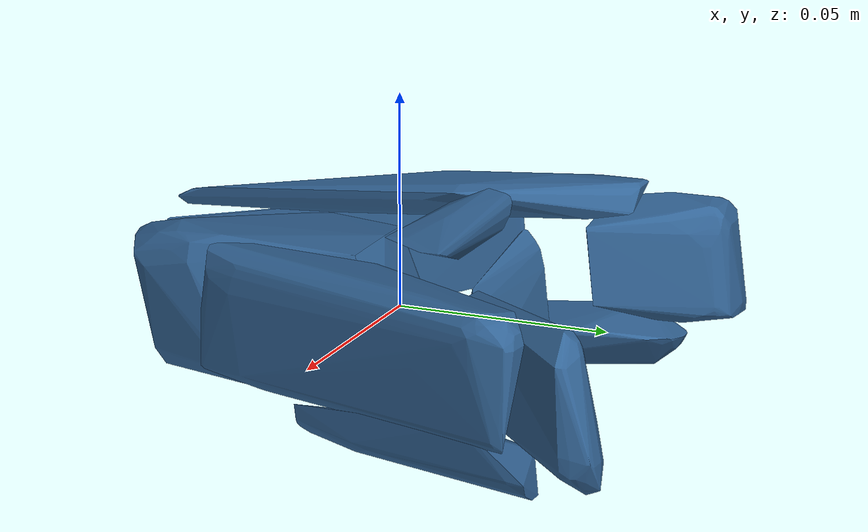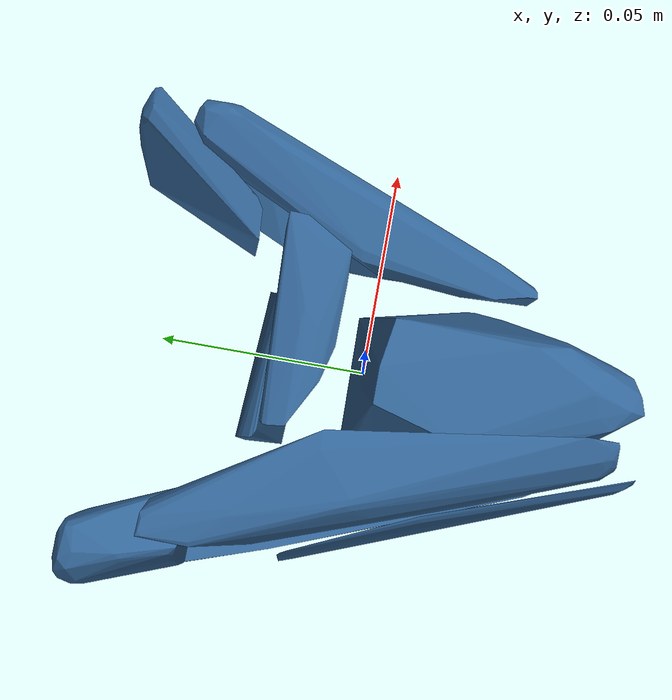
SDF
<?xml version='1.0' encoding='UTF-8'?>
<!-- This SDF was autogenerated by obj_to_drake_sdf.py -->
<sdf version="1.7">
  <model name="A_shape_video">
    <link name="A_shape_video">
      <inertial>
        <pose>0 0 0 0 0 0</pose>
        <mass>0.05</mass>
        <inertia>
          <ixx>4.9586535e-05</ixx>
          <iyy>6.0533609e-05</iyy>
          <izz>9.3121088e-05</izz>
          <ixy>1.6285883e-06</ixy>
          <ixz>1.030854e-06</ixz>
          <iyz>7.3376111e-07</iyz>
        </inertia>
      </inertial>
      <visual name="convex_0">
        <pose>0 0 0 0 0 0</pose>
        <geometry>
          <mesh>
            <uri>A_shape_video_convex_0.obj</uri>
          </mesh>
        </geometry>
        <material>
          <diffuse>0.19607843137254902 0.39215686274509803 0.5882352941176471 1</diffuse>
        </material>
      </visual>
      <collision name="convex_0_volume">
        <pose>0 0 0 0 0 0</pose>
        <geometry>
          <mesh>
            <uri>A_shape_video_convex_0.obj</uri>
          </mesh>
        </geometry>
        <drake:proximity_properties xmlns:drake="uri:drake">
          <drake:compliant_hydroelastic/>
          <drake:hydroelastic_modulus> 3.0e7 </drake:hydroelastic_modulus>
          <drake:mesh_resolution_hint> 0.02 </drake:mesh_resolution_hint>
          <drake:hunt_crossley_dissipation>10</drake:hunt_crossley_dissipation>
          <drake:mu_dynamic>0.3</drake:mu_dynamic>
        </drake:proximity_properties>
      </collision>
      <visual name="convex_1">
        <pose>0 0 0 0 0 0</pose>
        <geometry>
          <mesh>
            <uri>A_shape_video_convex_1.obj</uri>
          </mesh>
        </geometry>
        <material>
          <diffuse>0.19607843137254902 0.39215686274509803 0.5882352941176471 1</diffuse>
        </material>
      </visual>
      <collision name="convex_1_volume">
        <pose>0 0 0 0 0 0</pose>
        <geometry>
          <mesh>
            <uri>A_shape_video_convex_1.obj</uri>
          </mesh>
        </geometry>
        <drake:proximity_properties xmlns:drake="uri:drake">
          <drake:compliant_hydroelastic/>
          <drake:hydroelastic_modulus> 3.0e7 </drake:hydroelastic_modulus>
          <drake:mesh_resolution_hint> 0.02 </drake:mesh_resolution_hint>
          <drake:hunt_crossley_dissipation>10</drake:hunt_crossley_dissipation>
          <drake:mu_dynamic>0.3</drake:mu_dynamic>
        </drake:proximity_properties>
      </collision>
      <visual name="convex_2">
        <pose>0 0 0 0 0 0</pose>
        <geometry>
          <mesh>
            <uri>A_shape_video_convex_2.obj</uri>
          </mesh>
        </geometry>
        <material>
          <diffuse>0.19607843137254902 0.39215686274509803 0.5882352941176471 1</diffuse>
        </material>
      </visual>
      <collision name="convex_2_volume">
        <pose>0 0 0 0 0 0</pose>
        <geometry>
          <mesh>
            <uri>A_shape_video_convex_2.obj</uri>
          </mesh>
        </geometry>
        <drake:proximity_properties xmlns:drake="uri:drake">
          <drake:compliant_hydroelastic/>
          <drake:hydroelastic_modulus> 3.0e7 </drake:hydroelastic_modulus>
          <drake:mesh_resolution_hint> 0.02 </drake:mesh_resolution_hint>
          <drake:hunt_crossley_dissipation>10</drake:hunt_crossley_dissipation>
          <drake:mu_dynamic>0.3</drake:mu_dynamic>
        </drake:proximity_properties>
      </collision>
      <visual name="convex_3">
        <pose>0 0 0 0 0 0</pose>
        <geometry>
          <mesh>
            <uri>A_shape_video_convex_3.obj</uri>
          </mesh>
        </geometry>
        <material>
          <diffuse>0.19607843137254902 0.39215686274509803 0.5882352941176471 1</diffuse>
        </material>
      </visual>
      <collision name="convex_3_volume">
        <pose>0 0 0 0 0 0</pose>
        <geometry>
          <mesh>
            <uri>A_shape_video_convex_3.obj</uri>
          </mesh>
        </geometry>
        <drake:proximity_properties xmlns:drake="uri:drake">
          <drake:compliant_hydroelastic/>
          <drake:hydroelastic_modulus> 3.0e7 </drake:hydroelastic_modulus>
          <drake:mesh_resolution_hint> 0.02 </drake:mesh_resolution_hint>
          <drake:hunt_crossley_dissipation>10</drake:hunt_crossley_dissipation>
          <drake:mu_dynamic>0.3</drake:mu_dynamic>
        </drake:proximity_properties>
      </collision>
      <visual name="convex_4">
        <pose>0 0 0 0 0 0</pose>
        <geometry>
          <mesh>
            <uri>A_shape_video_convex_4.obj</uri>
          </mesh>
        </geometry>
        <material>
          <diffuse>0.19607843137254902 0.39215686274509803 0.5882352941176471 1</diffuse>
        </material>
      </visual>
      <collision name="convex_4_volume">
        <pose>0 0 0 0 0 0</pose>
        <geometry>
          <mesh>
            <uri>A_shape_video_convex_4.obj</uri>
          </mesh>
        </geometry>
        <drake:proximity_properties xmlns:drake="uri:drake">
          <drake:compliant_hydroelastic/>
          <drake:hydroelastic_modulus> 3.0e7 </drake:hydroelastic_modulus>
          <drake:mesh_resolution_hint> 0.02 </drake:mesh_resolution_hint>
          <drake:hunt_crossley_dissipation>10</drake:hunt_crossley_dissipation>
          <drake:mu_dynamic>0.3</drake:mu_dynamic>
        </drake:proximity_properties>
      </collision>
      <visual name="convex_5">
        <pose>0 0 0 0 0 0</pose>
        <geometry>
          <mesh>
            <uri>A_shape_video_convex_5.obj</uri>
          </mesh>
        </geometry>
        <material>
          <diffuse>0.19607843137254902 0.39215686274509803 0.5882352941176471 1</diffuse>
        </material>
      </visual>
      <collision name="convex_5_volume">
        <pose>0 0 0 0 0 0</pose>
        <geometry>
          <mesh>
            <uri>A_shape_video_convex_5.obj</uri>
          </mesh>
        </geometry>
        <drake:proximity_properties xmlns:drake="uri:drake">
          <drake:compliant_hydroelastic/>
          <drake:hydroelastic_modulus> 3.0e7 </drake:hydroelastic_modulus>
          <drake:mesh_resolution_hint> 0.02 </drake:mesh_resolution_hint>
          <drake:hunt_crossley_dissipation>10</drake:hunt_crossley_dissipation>
          <drake:mu_dynamic>0.3</drake:mu_dynamic>
        </drake:proximity_properties>
      </collision>
      <visual name="convex_6">
        <pose>0 0 0 0 0 0</pose>
        <geometry>
          <mesh>
            <uri>A_shape_video_convex_6.obj</uri>
          </mesh>
        </geometry>
        <material>
          <diffuse>0.19607843137254902 0.39215686274509803 0.5882352941176471 1</diffuse>
        </material>
      </visual>
      <collision name="convex_6_volume">
        <pose>0 0 0 0 0 0</pose>
        <geometry>
          <mesh>
            <uri>A_shape_video_convex_6.obj</uri>
          </mesh>
        </geometry>
        <drake:proximity_properties xmlns:drake="uri:drake">
          <drake:compliant_hydroelastic/>
          <drake:hydroelastic_modulus> 3.0e7 </drake:hydroelastic_modulus>
          <drake:mesh_resolution_hint> 0.02 </drake:mesh_resolution_hint>
          <drake:hunt_crossley_dissipation>10</drake:hunt_crossley_dissipation>
          <drake:mu_dynamic>0.3</drake:mu_dynamic>
        </drake:proximity_properties>
      </collision>
      <visual name="convex_7">
        <pose>0 0 0 0 0 0</pose>
        <geometry>
          <mesh>
            <uri>A_shape_video_convex_7.obj</uri>
          </mesh>
        </geometry>
        <material>
          <diffuse>0.19607843137254902 0.39215686274509803 0.5882352941176471 1</diffuse>
        </material>
      </visual>
      <collision name="convex_7_volume">
        <pose>0 0 0 0 0 0</pose>
        <geometry>
          <mesh>
            <uri>A_shape_video_convex_7.obj</uri>
          </mesh>
        </geometry>
        <drake:proximity_properties xmlns:drake="uri:drake">
          <drake:compliant_hydroelastic/>
          <drake:hydroelastic_modulus> 3.0e7 </drake:hydroelastic_modulus>
          <drake:mesh_resolution_hint> 0.02 </drake:mesh_resolution_hint>
          <drake:hunt_crossley_dissipation>10</drake:hunt_crossley_dissipation>
          <drake:mu_dynamic>0.3</drake:mu_dynamic>
        </drake:proximity_properties>
      </collision>
      <visual name="convex_8">
        <pose>0 0 0 0 0 0</pose>
        <geometry>
          <mesh>
            <uri>A_shape_video_convex_8.obj</uri>
          </mesh>
        </geometry>
        <material>
          <diffuse>0.19607843137254902 0.39215686274509803 0.5882352941176471 1</diffuse>
        </material>
      </visual>
      <collision name="convex_8_volume">
        <pose>0 0 0 0 0 0</pose>
        <geometry>
          <mesh>
            <uri>A_shape_video_convex_8.obj</uri>
          </mesh>
        </geometry>
        <drake:proximity_properties xmlns:drake="uri:drake">
          <drake:compliant_hydroelastic/>
          <drake:hydroelastic_modulus> 3.0e7 </drake:hydroelastic_modulus>
          <drake:mesh_resolution_hint> 0.02 </drake:mesh_resolution_hint>
          <drake:hunt_crossley_dissipation>10</drake:hunt_crossley_dissipation>
          <drake:mu_dynamic>0.3</drake:mu_dynamic>
        </drake:proximity_properties>
      </collision>
      <visual name="convex_9">
        <pose>0 0 0 0 0 0</pose>
        <geometry>
          <mesh>
            <uri>A_shape_video_convex_9.obj</uri>
          </mesh>
        </geometry>
        <material>
          <diffuse>0.19607843137254902 0.39215686274509803 0.5882352941176471 1</diffuse>
        </material>
      </visual>
      <collision name="convex_9_volume">
        <pose>0 0 0 0 0 0</pose>
        <geometry>
          <mesh>
            <uri>A_shape_video_convex_9.obj</uri>
          </mesh>
        </geometry>
        <drake:proximity_properties xmlns:drake="uri:drake">
          <drake:compliant_hydroelastic/>
          <drake:hydroelastic_modulus> 3.0e7 </drake:hydroelastic_modulus>
          <drake:mesh_resolution_hint> 0.02 </drake:mesh_resolution_hint>
          <drake:hunt_crossley_dissipation>10</drake:hunt_crossley_dissipation>
          <drake:mu_dynamic>0.3</drake:mu_dynamic>
        </drake:proximity_properties>
      </collision>
    </link>
  </model>
</sdf>
